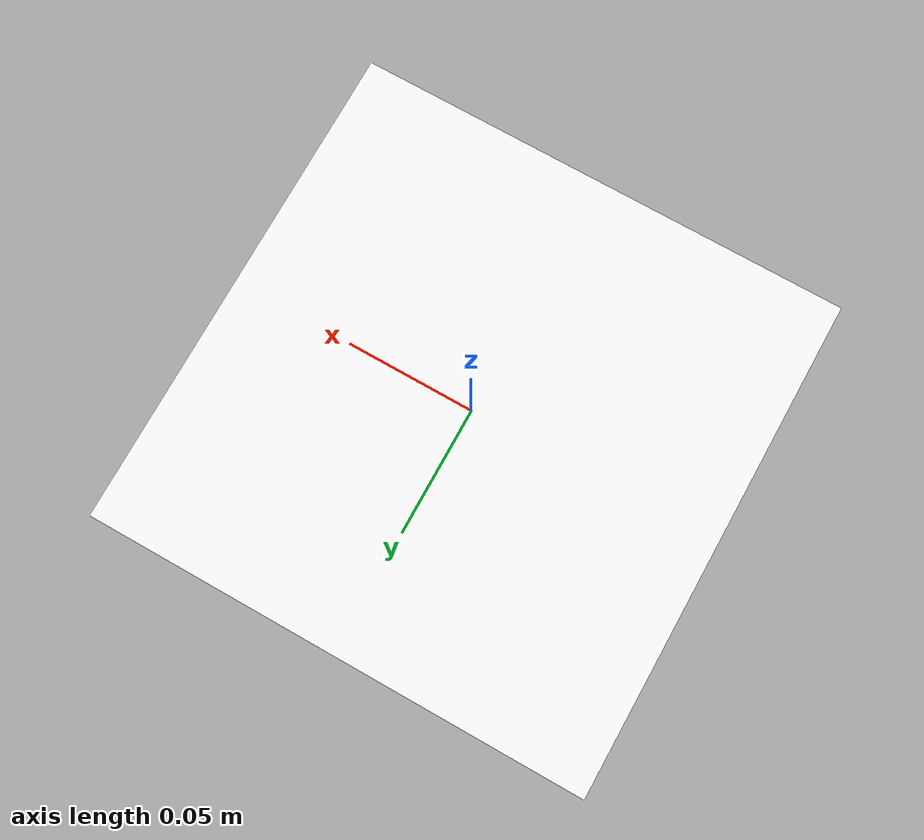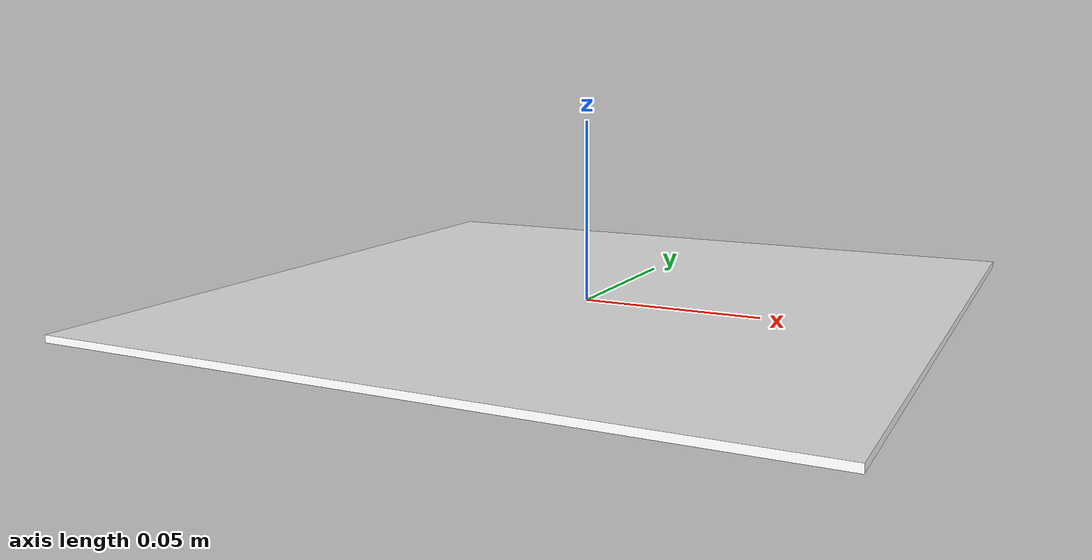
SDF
<?xml version='1.0'?>
<sdf version='1.6'>
  <model name='apriltag_b'>
    <link name='main'>
    <pose frame=''>0 0 0 0 0 0</pose>
      <visual name='main_at'>
        <geometry>
          <mesh>
            <scale>0.195 0.195 0.195</scale>
            <uri>model://apriltag_b/meshes/apriltag.dae</uri>
          </mesh>
        </geometry>
        <material>
          <diffuse>1.0 1.0 1.0</diffuse>
          <specular>1.0 1.0 1.0</specular>
          <pbr>
            <metal>
              <albedo_map>model://apriltag_b/meshes/tag36_11_00002.png</albedo_map>
            </metal>
          </pbr>
        </material>
      </visual>
     </link>
    <static>1</static>
  </model>
</sdf>
